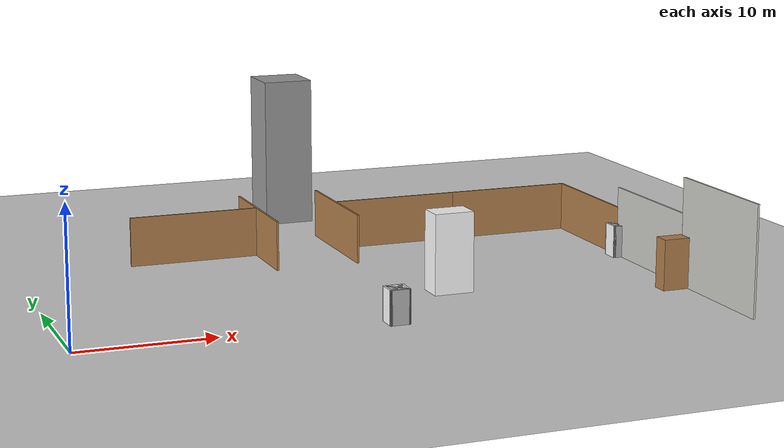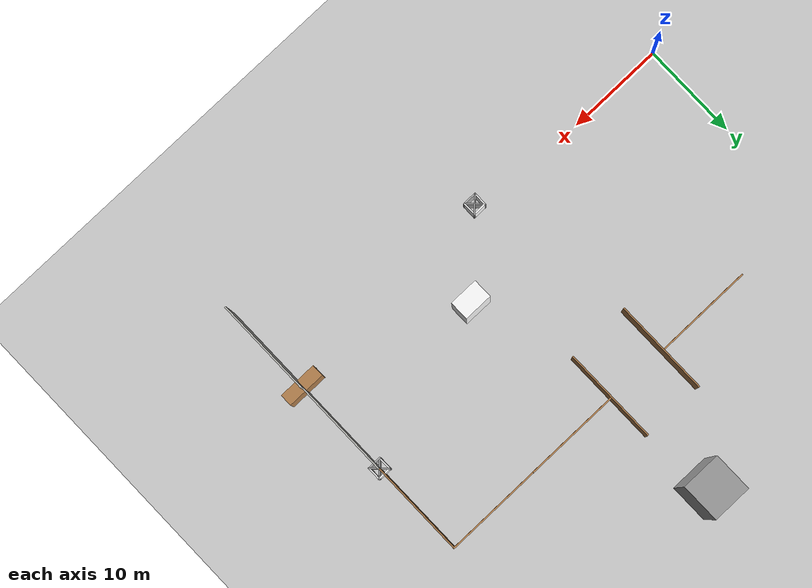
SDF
<sdf version="1.7">
 <world name="default">
  <model name="ground_plane">
   <static>1</static>
   <link name="link">
    <collision name="collision">
     <geometry><plane><normal>0 0 1</normal><size>100 100</size></plane></geometry>
     <surface>
      <contact><collide_bitmask>65535</collide_bitmask></contact>
      <friction><ode><mu>100</mu><mu2>50</mu2></ode></friction>
     </surface>
    </collision>
    <visual name="visual">
     <cast_shadows>0</cast_shadows>
     <geometry><plane><normal>0 0 1</normal><size>100 100</size></plane></geometry>
     <material>
      <script><uri>file://media/materials/scripts/gazebo.material</uri><name>Gazebo/Grey</name></script>
     </material>
    </visual>
   </link>
  </model>
  <model name="Untitled_clone_clone_3">
   <link name="Wall_0">
    <pose>-0.8775 -4.2975 0 0 -0 0</pose>
    <inertial>
     <mass>1</mass>
     <inertia><ixx>1</ixx><ixy>0</ixy><ixz>0</ixz><iyy>1</iyy><iyz>0</iyz><izz>1</izz></inertia>
    </inertial>
    <visual name="Wall_0_Visual">
     <pose>0 0 1.9 0 -0 0</pose>
     <geometry><box><size>10 0.15 3.8</size></box></geometry>
     <material>
      <script><uri>file://media/materials/scripts/gazebo.material</uri><name>Gazebo/Wood</name></script>
      <ambient>1 1 1 1</ambient>
      <shader type="pixel"><normal_map>__default__</normal_map></shader>
      <diffuse>1 1 1 1</diffuse>
      <specular>0.2 0.2 0.2 1</specular>
      <emissive>0 0 0 1</emissive>
     </material>
     <meta><layer>0</layer></meta>
    </visual>
    <collision name="Wall_0_Collision">
     <pose>0 0 1.9 0 -0 0</pose>
     <geometry><box><size>10 0.15 3.8</size></box></geometry>
     <surface>
      <friction>
       <ode><mu>1</mu><mu2>1</mu2><fdir1>0 0 0</fdir1><slip1>0</slip1><slip2>0</slip2></ode>
       <torsional>
        <coefficient>1</coefficient>
        <patch_radius>0</patch_radius>
        <surface_radius>0</surface_radius>
        <use_patch_radius>1</use_patch_radius>
        <ode><slip>0</slip></ode>
       </torsional>
      </friction>
      <bounce><restitution_coefficient>0</restitution_coefficient><threshold>1e+06</threshold></bounce>
      <contact>
       <collide_without_contact>0</collide_without_contact>
       <collide_without_contact_bitmask>1</collide_without_contact_bitmask>
       <collide_bitmask>1</collide_bitmask>
       <ode>
        <soft_cfm>0</soft_cfm>
        <soft_erp>0.2</soft_erp>
        <kp>1e+13</kp>
        <kd>1</kd>
        <max_vel>0.01</max_vel>
        <min_depth>0</min_depth>
       </ode>
       <bullet>
        <split_impulse>1</split_impulse>
        <split_impulse_penetration_threshold>-0.01</split_impulse_penetration_threshold>
        <soft_cfm>0</soft_cfm>
        <soft_erp>0.2</soft_erp>
        <kp>1e+13</kp>
        <kd>1</kd>
       </bullet>
      </contact>
     </surface>
    </collision>
   </link>
   <static>1</static>
   <pose>14.8908 25.1794 0 0 -0 0</pose>
  </model>
  <model name="Untitled_clone_clone_0_clone_2_clone_clone">
   <link name="Wall_0">
    <pose>-0.8775 -4.2975 0 0 -0 0</pose>
    <inertial>
     <mass>1</mass>
     <inertia><ixx>1</ixx><ixy>0</ixy><ixz>0</ixz><iyy>1</iyy><iyz>0</iyz><izz>1</izz></inertia>
    </inertial>
    <visual name="Wall_0_Visual">
     <pose>0 0 1.9 0 -0 0</pose>
     <geometry><box><size>10 0.15 3.8</size></box></geometry>
     <material>
      <script><uri>file://media/materials/scripts/gazebo.material</uri><name>Gazebo/Wood</name></script>
      <ambient>1 1 1 1</ambient>
      <shader type="pixel"><normal_map>__default__</normal_map></shader>
      <diffuse>1 1 1 1</diffuse>
      <specular>0.2 0.2 0.2 1</specular>
      <emissive>0 0 0 1</emissive>
     </material>
     <meta><layer>0</layer></meta>
    </visual>
    <collision name="Wall_0_Collision">
     <pose>0 0 1.9 0 -0 0</pose>
     <geometry><box><size>10 0.15 3.8</size></box></geometry>
     <surface>
      <friction>
       <ode><mu>1</mu><mu2>1</mu2><fdir1>0 0 0</fdir1><slip1>0</slip1><slip2>0</slip2></ode>
       <torsional>
        <coefficient>1</coefficient>
        <patch_radius>0</patch_radius>
        <surface_radius>0</surface_radius>
        <use_patch_radius>1</use_patch_radius>
        <ode><slip>0</slip></ode>
       </torsional>
      </friction>
      <bounce><restitution_coefficient>0</restitution_coefficient><threshold>1e+06</threshold></bounce>
      <contact>
       <collide_without_contact>0</collide_without_contact>
       <collide_without_contact_bitmask>1</collide_without_contact_bitmask>
       <collide_bitmask>1</collide_bitmask>
       <ode>
        <soft_cfm>0</soft_cfm>
        <soft_erp>0.2</soft_erp>
        <kp>1e+13</kp>
        <kd>1</kd>
        <max_vel>0.01</max_vel>
        <min_depth>0</min_depth>
       </ode>
       <bullet>
        <split_impulse>1</split_impulse>
        <split_impulse_penetration_threshold>-0.01</split_impulse_penetration_threshold>
        <soft_cfm>0</soft_cfm>
        <soft_erp>0.2</soft_erp>
        <kp>1e+13</kp>
        <kd>1</kd>
       </bullet>
      </contact>
     </surface>
    </collision>
   </link>
   <static>1</static>
   <pose>14.7928 21.4717 0 0 -0 1.5708</pose>
  </model>
  <model name="Untitled_clone_clone_0_clone_2_clone_clone_clone">
   <link name="Wall_0">
    <pose>-0.8775 -4.2975 0 0 -0 0</pose>
    <inertial>
     <mass>1</mass>
     <inertia><ixx>1</ixx><ixy>0</ixy><ixz>0</ixz><iyy>1</iyy><iyz>0</iyz><izz>1</izz></inertia>
    </inertial>
    <visual name="Wall_0_Visual">
     <pose>0 0 1.9 0 -0 0</pose>
     <geometry><box><size>10 0.15 3.8</size></box></geometry>
     <material>
      <script><uri>file://media/materials/scripts/gazebo.material</uri><name>Gazebo/Wood</name></script>
      <ambient>1 1 1 1</ambient>
      <shader type="pixel"><normal_map>__default__</normal_map></shader>
      <diffuse>1 1 1 1</diffuse>
      <specular>0.2 0.2 0.2 1</specular>
      <emissive>0 0 0 1</emissive>
     </material>
     <meta><layer>0</layer></meta>
    </visual>
    <collision name="Wall_0_Collision">
     <pose>0 0 1.9 0 -0 0</pose>
     <geometry><box><size>10 0.15 3.8</size></box></geometry>
     <surface>
      <friction>
       <ode><mu>1</mu><mu2>1</mu2><fdir1>0 0 0</fdir1><slip1>0</slip1><slip2>0</slip2></ode>
       <torsional>
        <coefficient>1</coefficient>
        <patch_radius>0</patch_radius>
        <surface_radius>0</surface_radius>
        <use_patch_radius>1</use_patch_radius>
        <ode><slip>0</slip></ode>
       </torsional>
      </friction>
      <bounce><restitution_coefficient>0</restitution_coefficient><threshold>1e+06</threshold></bounce>
      <contact>
       <collide_without_contact>0</collide_without_contact>
       <collide_without_contact_bitmask>1</collide_without_contact_bitmask>
       <collide_bitmask>1</collide_bitmask>
       <ode>
        <soft_cfm>0</soft_cfm>
        <soft_erp>0.2</soft_erp>
        <kp>1e+13</kp>
        <kd>1</kd>
        <max_vel>0.01</max_vel>
        <min_depth>0</min_depth>
       </ode>
       <bullet>
        <split_impulse>1</split_impulse>
        <split_impulse_penetration_threshold>-0.01</split_impulse_penetration_threshold>
        <soft_cfm>0</soft_cfm>
        <soft_erp>0.2</soft_erp>
        <kp>1e+13</kp>
        <kd>1</kd>
       </bullet>
      </contact>
     </surface>
    </collision>
   </link>
   <static>1</static>
   <pose>21.2549 21.4517 0 0 -0 1.5708</pose>
  </model>
  <model name="unit_box_clone">
   <link name="link">
    <inertial>
     <mass>1</mass>
     <inertia>
      <ixx>0.166667</ixx>
      <ixy>0</ixy>
      <ixz>0</ixz>
      <iyy>0.166667</iyy>
      <iyz>0</iyz>
      <izz>0.166667</izz>
     </inertia>
    </inertial>
    <visual name="visual">
     <geometry><box><size>4 4 12</size></box></geometry>
     <material>
      <script><name>Gazebo/Grey</name><uri>file://media/materials/scripts/gazebo.material</uri></script>
      <shader type="pixel"><normal_map>__default__</normal_map></shader>
      <ambient>0.3 0.3 0.3 1</ambient>
      <diffuse>0.7 0.7 0.7 1</diffuse>
      <specular>0.01 0.01 0.01 1</specular>
      <emissive>0 0 0 1</emissive>
     </material>
     <pose>0 0 6 0 -0 0</pose>
    </visual>
    <collision name="collision">
     <pose>0 0 6 0 -0 0</pose>
     <geometry><box><size>4 4 12</size></box></geometry>
     <surface>
      <friction>
       <ode><mu>1</mu><mu2>1</mu2><fdir1>0 0 0</fdir1><slip1>0</slip1><slip2>0</slip2></ode>
       <torsional>
        <coefficient>1</coefficient>
        <patch_radius>0</patch_radius>
        <surface_radius>0</surface_radius>
        <use_patch_radius>1</use_patch_radius>
        <ode><slip>0</slip></ode>
       </torsional>
      </friction>
      <bounce><restitution_coefficient>0</restitution_coefficient><threshold>1e+06</threshold></bounce>
      <contact>
       <collide_without_contact>0</collide_without_contact>
       <collide_without_contact_bitmask>1</collide_without_contact_bitmask>
       <collide_bitmask>1</collide_bitmask>
       <ode>
        <soft_cfm>0</soft_cfm>
        <soft_erp>0.2</soft_erp>
        <kp>1e+13</kp>
        <kd>1</kd>
        <max_vel>0.01</max_vel>
        <min_depth>0</min_depth>
       </ode>
       <bullet>
        <split_impulse>1</split_impulse>
        <split_impulse_penetration_threshold>-0.01</split_impulse_penetration_threshold>
        <soft_cfm>0</soft_cfm>
        <soft_erp>0.2</soft_erp>
        <kp>1e+13</kp>
        <kd>1</kd>
       </bullet>
      </contact>
     </surface>
    </collision>
   </link>
   <static>0</static>
   <pose>24.9828 32.7649 -0 0 -0 0</pose>
  </model>
  <model name="Untitled_clone_clone_3_clone">
   <link name="Wall_0">
    <pose>-0.8775 -4.2975 0 0 -0 0</pose>
    <inertial>
     <mass>1</mass>
     <inertia><ixx>1</ixx><ixy>0</ixy><ixz>0</ixz><iyy>1</iyy><iyz>0</iyz><izz>1</izz></inertia>
    </inertial>
    <visual name="Wall_0_Visual">
     <pose>0 0 1.9 0 -0 0</pose>
     <geometry><box><size>10 0.15 3.8</size></box></geometry>
     <material>
      <script><uri>file://media/materials/scripts/gazebo.material</uri><name>Gazebo/Wood</name></script>
      <ambient>1 1 1 1</ambient>
      <shader type="pixel"><normal_map>__default__</normal_map></shader>
      <diffuse>1 1 1 1</diffuse>
      <specular>0.2 0.2 0.2 1</specular>
      <emissive>0 0 0 1</emissive>
     </material>
     <meta><layer>0</layer></meta>
    </visual>
    <collision name="Wall_0_Collision">
     <pose>0 0 1.9 0 -0 0</pose>
     <geometry><box><size>10 0.15 3.8</size></box></geometry>
     <surface>
      <friction>
       <ode><mu>1</mu><mu2>1</mu2><fdir1>0 0 0</fdir1><slip1>0</slip1><slip2>0</slip2></ode>
       <torsional>
        <coefficient>1</coefficient>
        <patch_radius>0</patch_radius>
        <surface_radius>0</surface_radius>
        <use_patch_radius>1</use_patch_radius>
        <ode><slip>0</slip></ode>
       </torsional>
      </friction>
      <bounce><restitution_coefficient>0</restitution_coefficient><threshold>1e+06</threshold></bounce>
      <contact>
       <collide_without_contact>0</collide_without_contact>
       <collide_without_contact_bitmask>1</collide_without_contact_bitmask>
       <collide_bitmask>1</collide_bitmask>
       <ode>
        <soft_cfm>0</soft_cfm>
        <soft_erp>0.2</soft_erp>
        <kp>1e+13</kp>
        <kd>1</kd>
        <max_vel>0.01</max_vel>
        <min_depth>0</min_depth>
       </ode>
       <bullet>
        <split_impulse>1</split_impulse>
        <split_impulse_penetration_threshold>-0.01</split_impulse_penetration_threshold>
        <soft_cfm>0</soft_cfm>
        <soft_erp>0.2</soft_erp>
        <kp>1e+13</kp>
        <kd>1</kd>
       </bullet>
      </contact>
     </surface>
    </collision>
   </link>
   <static>1</static>
   <pose>31.472 25.0526 0 0 -0 0</pose>
  </model>
  <model name="Untitled_clone_clone_3_clone_0">
   <link name="Wall_0">
    <pose>-0.8775 -4.2975 0 0 -0 0</pose>
    <inertial>
     <mass>1</mass>
     <inertia><ixx>1</ixx><ixy>0</ixy><ixz>0</ixz><iyy>1</iyy><iyz>0</iyz><izz>1</izz></inertia>
    </inertial>
    <visual name="Wall_0_Visual">
     <pose>0 0 1.9 0 -0 0</pose>
     <geometry><box><size>10 0.15 3.8</size></box></geometry>
     <material>
      <script><uri>file://media/materials/scripts/gazebo.material</uri><name>Gazebo/Wood</name></script>
      <ambient>1 1 1 1</ambient>
      <shader type="pixel"><normal_map>__default__</normal_map></shader>
      <diffuse>1 1 1 1</diffuse>
      <specular>0.2 0.2 0.2 1</specular>
      <emissive>0 0 0 1</emissive>
     </material>
     <meta><layer>0</layer></meta>
    </visual>
    <collision name="Wall_0_Collision">
     <pose>0 0 1.9 0 -0 0</pose>
     <geometry><box><size>10 0.15 3.8</size></box></geometry>
     <surface>
      <friction>
       <ode><mu>1</mu><mu2>1</mu2><fdir1>0 0 0</fdir1><slip1>0</slip1><slip2>0</slip2></ode>
       <torsional>
        <coefficient>1</coefficient>
        <patch_radius>0</patch_radius>
        <surface_radius>0</surface_radius>
        <use_patch_radius>1</use_patch_radius>
        <ode><slip>0</slip></ode>
       </torsional>
      </friction>
      <bounce><restitution_coefficient>0</restitution_coefficient><threshold>1e+06</threshold></bounce>
      <contact>
       <collide_without_contact>0</collide_without_contact>
       <collide_without_contact_bitmask>1</collide_without_contact_bitmask>
       <collide_bitmask>1</collide_bitmask>
       <ode>
        <soft_cfm>0</soft_cfm>
        <soft_erp>0.2</soft_erp>
        <kp>1e+13</kp>
        <kd>1</kd>
        <max_vel>0.01</max_vel>
        <min_depth>0</min_depth>
       </ode>
       <bullet>
        <split_impulse>1</split_impulse>
        <split_impulse_penetration_threshold>-0.01</split_impulse_penetration_threshold>
        <soft_cfm>0</soft_cfm>
        <soft_erp>0.2</soft_erp>
        <kp>1e+13</kp>
        <kd>1</kd>
       </bullet>
      </contact>
     </surface>
    </collision>
   </link>
   <static>1</static>
   <pose>41.3724 25.0578 0 0 -0 0</pose>
  </model>
  <model name="Untitled_clone_clone_0_clone_2_clone_clone_clone_clone">
   <link name="Wall_0">
    <pose>-0.8775 -4.2975 0 0 -0 0</pose>
    <inertial>
     <mass>1</mass>
     <inertia><ixx>1</ixx><ixy>0</ixy><ixz>0</ixz><iyy>1</iyy><iyz>0</iyz><izz>1</izz></inertia>
    </inertial>
    <visual name="Wall_0_Visual">
     <pose>0 0 1.9 0 -0 0</pose>
     <geometry><box><size>10 0.15 3.8</size></box></geometry>
     <material>
      <script><uri>file://media/materials/scripts/gazebo.material</uri><name>Gazebo/Wood</name></script>
      <ambient>1 1 1 1</ambient>
      <shader type="pixel"><normal_map>__default__</normal_map></shader>
      <diffuse>1 1 1 1</diffuse>
      <specular>0.2 0.2 0.2 1</specular>
      <emissive>0 0 0 1</emissive>
     </material>
     <meta><layer>0</layer></meta>
    </visual>
    <collision name="Wall_0_Collision">
     <pose>0 0 1.9 0 -0 0</pose>
     <geometry><box><size>10 0.15 3.8</size></box></geometry>
     <surface>
      <friction>
       <ode><mu>1</mu><mu2>1</mu2><fdir1>0 0 0</fdir1><slip1>0</slip1><slip2>0</slip2></ode>
       <torsional>
        <coefficient>1</coefficient>
        <patch_radius>0</patch_radius>
        <surface_radius>0</surface_radius>
        <use_patch_radius>1</use_patch_radius>
        <ode><slip>0</slip></ode>
       </torsional>
      </friction>
      <bounce><restitution_coefficient>0</restitution_coefficient><threshold>1e+06</threshold></bounce>
      <contact>
       <collide_without_contact>0</collide_without_contact>
       <collide_without_contact_bitmask>1</collide_without_contact_bitmask>
       <collide_bitmask>1</collide_bitmask>
       <ode>
        <soft_cfm>0</soft_cfm>
        <soft_erp>0.2</soft_erp>
        <kp>1e+13</kp>
        <kd>1</kd>
        <max_vel>0.01</max_vel>
        <min_depth>0</min_depth>
       </ode>
       <bullet>
        <split_impulse>1</split_impulse>
        <split_impulse_penetration_threshold>-0.01</split_impulse_penetration_threshold>
        <soft_cfm>0</soft_cfm>
        <soft_erp>0.2</soft_erp>
        <kp>1e+13</kp>
        <kd>1</kd>
       </bullet>
      </contact>
     </surface>
    </collision>
   </link>
   <static>1</static>
   <pose>41.1492 16.6848 0 0 -0 1.5708</pose>
  </model>
  <model name="Untitled_1_clone_0">
   <link name="Wall_10">
    <pose>4.92197 -3.43197 0 0 -0 1.5708</pose>
    <inertial>
     <mass>1</mass>
     <inertia><ixx>1</ixx><ixy>0</ixy><ixz>0</ixz><iyy>1</iyy><iyz>0</iyz><izz>1</izz></inertia>
    </inertial>
    <visual name="Wall_10_Visual">
     <pose>0 0 1.25 0 -0 0</pose>
     <geometry><box><size>1.5 0.15 2.5</size></box></geometry>
     <material>
      <script><uri>file://media/materials/scripts/gazebo.material</uri><name>Gazebo/CoM</name></script>
      <ambient>1 1 1 1</ambient>
      <shader type="pixel"><normal_map>__default__</normal_map></shader>
      <diffuse>1 1 1 1</diffuse>
      <specular>0 0 0 1</specular>
      <emissive>0 0 0 1</emissive>
     </material>
     <meta><layer>0</layer></meta>
    </visual>
    <collision name="Wall_10_Collision">
     <pose>0 0 1.25 0 -0 0</pose>
     <geometry><box><size>1.5 0.15 2.5</size></box></geometry>
     <surface>
      <friction>
       <ode><mu>1</mu><mu2>1</mu2><fdir1>0 0 0</fdir1><slip1>0</slip1><slip2>0</slip2></ode>
       <torsional>
        <coefficient>1</coefficient>
        <patch_radius>0</patch_radius>
        <surface_radius>0</surface_radius>
        <use_patch_radius>1</use_patch_radius>
        <ode><slip>0</slip></ode>
       </torsional>
      </friction>
      <bounce><restitution_coefficient>0</restitution_coefficient><threshold>1e+06</threshold></bounce>
      <contact>
       <collide_without_contact>0</collide_without_contact>
       <collide_without_contact_bitmask>1</collide_without_contact_bitmask>
       <collide_bitmask>1</collide_bitmask>
       <ode>
        <soft_cfm>0</soft_cfm>
        <soft_erp>0.2</soft_erp>
        <kp>1e+13</kp>
        <kd>1</kd>
        <max_vel>0.01</max_vel>
        <min_depth>0</min_depth>
       </ode>
       <bullet>
        <split_impulse>1</split_impulse>
        <split_impulse_penetration_threshold>-0.01</split_impulse_penetration_threshold>
        <soft_cfm>0</soft_cfm>
        <soft_erp>0.2</soft_erp>
        <kp>1e+13</kp>
        <kd>1</kd>
       </bullet>
      </contact>
     </surface>
    </collision>
   </link>
   <link name="Wall_11">
    <pose>5.59697 -3.43197 0 0 0 -0.785398</pose>
    <visual name="Wall_11_Visual">
     <pose>0 0 1.25 0 -0 0</pose>
     <geometry><box><size>2.05919 0.15 2.5</size></box></geometry>
     <material>
      <script><uri>file://media/materials/scripts/gazebo.material</uri><name>Gazebo/Grey</name></script>
      <ambient>1 1 1 1</ambient>
      <shader type="pixel"/>
     </material>
     <meta><layer>0</layer></meta>
    </visual>
    <collision name="Wall_11_Collision">
     <pose>0 0 1.25 0 -0 0</pose>
     <geometry><box><size>2.05919 0.15 2.5</size></box></geometry>
     <surface>
      <friction>
       <ode><mu>1</mu><mu2>1</mu2><fdir1>0 0 0</fdir1><slip1>0</slip1><slip2>0</slip2></ode>
       <torsional>
        <coefficient>1</coefficient>
        <patch_radius>0</patch_radius>
        <surface_radius>0</surface_radius>
        <use_patch_radius>1</use_patch_radius>
        <ode><slip>0</slip></ode>
       </torsional>
      </friction>
      <bounce><restitution_coefficient>0</restitution_coefficient><threshold>1e+06</threshold></bounce>
      <contact>
       <collide_without_contact>0</collide_without_contact>
       <collide_without_contact_bitmask>1</collide_without_contact_bitmask>
       <collide_bitmask>1</collide_bitmask>
       <ode>
        <soft_cfm>0</soft_cfm>
        <soft_erp>0.2</soft_erp>
        <kp>1e+13</kp>
        <kd>1</kd>
        <max_vel>0.01</max_vel>
        <min_depth>0</min_depth>
       </ode>
       <bullet>
        <split_impulse>1</split_impulse>
        <split_impulse_penetration_threshold>-0.01</split_impulse_penetration_threshold>
        <soft_cfm>0</soft_cfm>
        <soft_erp>0.2</soft_erp>
        <kp>1e+13</kp>
        <kd>1</kd>
       </bullet>
      </contact>
     </surface>
    </collision>
   </link>
   <link name="Wall_13">
    <pose>5.59697 -3.43197 0 0 -0 0.785398</pose>
    <visual name="Wall_13_Visual">
     <pose>0 0 1.25 0 -0 0</pose>
     <geometry><box><size>2.05919 0.15 2.5</size></box></geometry>
     <material>
      <script><uri>file://media/materials/scripts/gazebo.material</uri><name>Gazebo/Grey</name></script>
      <ambient>1 1 1 1</ambient>
      <shader type="pixel"/>
     </material>
     <meta><layer>0</layer></meta>
    </visual>
    <collision name="Wall_13_Collision">
     <pose>0 0 1.25 0 -0 0</pose>
     <geometry><box><size>2.05919 0.15 2.5</size></box></geometry>
     <surface>
      <friction>
       <ode><mu>1</mu><mu2>1</mu2><fdir1>0 0 0</fdir1><slip1>0</slip1><slip2>0</slip2></ode>
       <torsional>
        <coefficient>1</coefficient>
        <patch_radius>0</patch_radius>
        <surface_radius>0</surface_radius>
        <use_patch_radius>1</use_patch_radius>
        <ode><slip>0</slip></ode>
       </torsional>
      </friction>
      <bounce><restitution_coefficient>0</restitution_coefficient><threshold>1e+06</threshold></bounce>
      <contact>
       <collide_without_contact>0</collide_without_contact>
       <collide_without_contact_bitmask>1</collide_without_contact_bitmask>
       <collide_bitmask>1</collide_bitmask>
       <ode>
        <soft_cfm>0</soft_cfm>
        <soft_erp>0.2</soft_erp>
        <kp>1e+13</kp>
        <kd>1</kd>
        <max_vel>0.01</max_vel>
        <min_depth>0</min_depth>
       </ode>
       <bullet>
        <split_impulse>1</split_impulse>
        <split_impulse_penetration_threshold>-0.01</split_impulse_penetration_threshold>
        <soft_cfm>0</soft_cfm>
        <soft_erp>0.2</soft_erp>
        <kp>1e+13</kp>
        <kd>1</kd>
       </bullet>
      </contact>
     </surface>
    </collision>
   </link>
   <link name="Wall_7">
    <pose>5.59697 -2.75697 0 0 -0 0</pose>
    <inertial>
     <mass>1</mass>
     <inertia><ixx>1</ixx><ixy>0</ixy><ixz>0</ixz><iyy>1</iyy><iyz>0</iyz><izz>1</izz></inertia>
    </inertial>
    <visual name="Wall_7_Visual">
     <pose>0 0 1.25 0 -0 0</pose>
     <geometry><box><size>1.5 0.15 2.5</size></box></geometry>
     <material>
      <script><uri>file://media/materials/scripts/gazebo.material</uri><name>Gazebo/CoM</name></script>
      <ambient>1 1 1 1</ambient>
      <shader type="pixel"><normal_map>__default__</normal_map></shader>
      <diffuse>1 1 1 1</diffuse>
      <specular>0 0 0 1</specular>
      <emissive>0 0 0 1</emissive>
     </material>
     <meta><layer>0</layer></meta>
    </visual>
    <collision name="Wall_7_Collision">
     <pose>0 0 1.25 0 -0 0</pose>
     <geometry><box><size>1.5 0.15 2.5</size></box></geometry>
     <surface>
      <friction>
       <ode><mu>1</mu><mu2>1</mu2><fdir1>0 0 0</fdir1><slip1>0</slip1><slip2>0</slip2></ode>
       <torsional>
        <coefficient>1</coefficient>
        <patch_radius>0</patch_radius>
        <surface_radius>0</surface_radius>
        <use_patch_radius>1</use_patch_radius>
        <ode><slip>0</slip></ode>
       </torsional>
      </friction>
      <bounce><restitution_coefficient>0</restitution_coefficient><threshold>1e+06</threshold></bounce>
      <contact>
       <collide_without_contact>0</collide_without_contact>
       <collide_without_contact_bitmask>1</collide_without_contact_bitmask>
       <collide_bitmask>1</collide_bitmask>
       <ode>
        <soft_cfm>0</soft_cfm>
        <soft_erp>0.2</soft_erp>
        <kp>1e+13</kp>
        <kd>1</kd>
        <max_vel>0.01</max_vel>
        <min_depth>0</min_depth>
       </ode>
       <bullet>
        <split_impulse>1</split_impulse>
        <split_impulse_penetration_threshold>-0.01</split_impulse_penetration_threshold>
        <soft_cfm>0</soft_cfm>
        <soft_erp>0.2</soft_erp>
        <kp>1e+13</kp>
        <kd>1</kd>
       </bullet>
      </contact>
     </surface>
    </collision>
   </link>
   <link name="Wall_8">
    <pose>6.27197 -3.43197 0 0 0 -1.5708</pose>
    <inertial>
     <mass>1</mass>
     <inertia><ixx>1</ixx><ixy>0</ixy><ixz>0</ixz><iyy>1</iyy><iyz>0</iyz><izz>1</izz></inertia>
    </inertial>
    <visual name="Wall_8_Visual">
     <pose>0 0 1.25 0 -0 0</pose>
     <geometry><box><size>1.5 0.15 2.5</size></box></geometry>
     <material>
      <script><uri>file://media/materials/scripts/gazebo.material</uri><name>Gazebo/CoM</name></script>
      <ambient>1 1 1 1</ambient>
      <shader type="pixel"><normal_map>__default__</normal_map></shader>
      <diffuse>1 1 1 1</diffuse>
      <specular>0 0 0 1</specular>
      <emissive>0 0 0 1</emissive>
     </material>
     <meta><layer>0</layer></meta>
    </visual>
    <collision name="Wall_8_Collision">
     <pose>0 0 1.25 0 -0 0</pose>
     <geometry><box><size>1.5 0.15 2.5</size></box></geometry>
     <surface>
      <friction>
       <ode><mu>1</mu><mu2>1</mu2><fdir1>0 0 0</fdir1><slip1>0</slip1><slip2>0</slip2></ode>
       <torsional>
        <coefficient>1</coefficient>
        <patch_radius>0</patch_radius>
        <surface_radius>0</surface_radius>
        <use_patch_radius>1</use_patch_radius>
        <ode><slip>0</slip></ode>
       </torsional>
      </friction>
      <bounce><restitution_coefficient>0</restitution_coefficient><threshold>1e+06</threshold></bounce>
      <contact>
       <collide_without_contact>0</collide_without_contact>
       <collide_without_contact_bitmask>1</collide_without_contact_bitmask>
       <collide_bitmask>1</collide_bitmask>
       <ode>
        <soft_cfm>0</soft_cfm>
        <soft_erp>0.2</soft_erp>
        <kp>1e+13</kp>
        <kd>1</kd>
        <max_vel>0.01</max_vel>
        <min_depth>0</min_depth>
       </ode>
       <bullet>
        <split_impulse>1</split_impulse>
        <split_impulse_penetration_threshold>-0.01</split_impulse_penetration_threshold>
        <soft_cfm>0</soft_cfm>
        <soft_erp>0.2</soft_erp>
        <kp>1e+13</kp>
        <kd>1</kd>
       </bullet>
      </contact>
     </surface>
    </collision>
   </link>
   <link name="Wall_9">
    <pose>5.59697 -4.10697 0 0 -0 3.14159</pose>
    <inertial>
     <mass>1</mass>
     <inertia><ixx>1</ixx><ixy>0</ixy><ixz>0</ixz><iyy>1</iyy><iyz>0</iyz><izz>1</izz></inertia>
    </inertial>
    <visual name="Wall_9_Visual">
     <pose>0 0 1.25 0 -0 0</pose>
     <geometry><box><size>1.5 0.15 2.5</size></box></geometry>
     <material>
      <script><uri>file://media/materials/scripts/gazebo.material</uri><name>Gazebo/CoM</name></script>
      <ambient>1 1 1 1</ambient>
      <shader type="pixel"><normal_map>__default__</normal_map></shader>
      <diffuse>0.7 0.7 0.7 1</diffuse>
      <specular>0.01 0.01 0.01 1</specular>
      <emissive>0 0 0 1</emissive>
     </material>
     <meta><layer>0</layer></meta>
    </visual>
    <collision name="Wall_9_Collision">
     <pose>0 0 1.25 0 -0 0</pose>
     <geometry><box><size>1.5 0.15 2.5</size></box></geometry>
     <surface>
      <friction>
       <ode><mu>1</mu><mu2>1</mu2><fdir1>0 0 0</fdir1><slip1>0</slip1><slip2>0</slip2></ode>
       <torsional>
        <coefficient>1</coefficient>
        <patch_radius>0</patch_radius>
        <surface_radius>0</surface_radius>
        <use_patch_radius>1</use_patch_radius>
        <ode><slip>0</slip></ode>
       </torsional>
      </friction>
      <bounce><restitution_coefficient>0</restitution_coefficient><threshold>1e+06</threshold></bounce>
      <contact>
       <collide_without_contact>0</collide_without_contact>
       <collide_without_contact_bitmask>1</collide_without_contact_bitmask>
       <collide_bitmask>1</collide_bitmask>
       <ode>
        <soft_cfm>0</soft_cfm>
        <soft_erp>0.2</soft_erp>
        <kp>1e+13</kp>
        <kd>1</kd>
        <max_vel>0.01</max_vel>
        <min_depth>0</min_depth>
       </ode>
       <bullet>
        <split_impulse>1</split_impulse>
        <split_impulse_penetration_threshold>-0.01</split_impulse_penetration_threshold>
        <soft_cfm>0</soft_cfm>
        <soft_erp>0.2</soft_erp>
        <kp>1e+13</kp>
        <kd>1</kd>
       </bullet>
      </contact>
     </surface>
    </collision>
   </link>
   <static>1</static>
   <pose>39.8518 14.1865 0 0 -0 0</pose>
  </model>
  <model name="Untitled_0_clone_6_clone">
   <link name="Wall_2">
    <pose>-0.3075 -1.8625 0 0 0 -1.5708</pose>
    <inertial>
     <mass>1</mass>
     <inertia><ixx>1</ixx><ixy>0</ixy><ixz>0</ixz><iyy>1</iyy><iyz>0</iyz><izz>1</izz></inertia>
    </inertial>
    <visual name="Wall_2_Visual">
     <pose>0 0 2.7 0 -0 0</pose>
     <geometry><box><size>10 0.15 5.4</size></box></geometry>
     <material>
      <script><uri>file://media/materials/scripts/gazebo.material</uri><name>Gazebo/CeilingTiled</name></script>
      <ambient>1 1 1 1</ambient>
      <shader type="pixel"><normal_map>__default__</normal_map></shader>
      <diffuse>1 1 1 1</diffuse>
      <specular>0 0 0 1</specular>
      <emissive>0 0 0 1</emissive>
     </material>
     <meta><layer>0</layer></meta>
    </visual>
    <collision name="Wall_2_Collision">
     <pose>0 0 2.7 0 -0 0</pose>
     <geometry><box><size>10 0.15 5.4</size></box></geometry>
     <surface>
      <friction>
       <ode><mu>1</mu><mu2>1</mu2><fdir1>0 0 0</fdir1><slip1>0</slip1><slip2>0</slip2></ode>
       <torsional>
        <coefficient>1</coefficient>
        <patch_radius>0</patch_radius>
        <surface_radius>0</surface_radius>
        <use_patch_radius>1</use_patch_radius>
        <ode><slip>0</slip></ode>
       </torsional>
      </friction>
      <bounce><restitution_coefficient>0</restitution_coefficient><threshold>1e+06</threshold></bounce>
      <contact>
       <collide_without_contact>0</collide_without_contact>
       <collide_without_contact_bitmask>1</collide_without_contact_bitmask>
       <collide_bitmask>1</collide_bitmask>
       <ode>
        <soft_cfm>0</soft_cfm>
        <soft_erp>0.2</soft_erp>
        <kp>1e+13</kp>
        <kd>1</kd>
        <max_vel>0.01</max_vel>
        <min_depth>0</min_depth>
       </ode>
       <bullet>
        <split_impulse>1</split_impulse>
        <split_impulse_penetration_threshold>-0.01</split_impulse_penetration_threshold>
        <soft_cfm>0</soft_cfm>
        <soft_erp>0.2</soft_erp>
        <kp>1e+13</kp>
        <kd>1</kd>
       </bullet>
      </contact>
     </surface>
    </collision>
   </link>
   <static>1</static>
   <pose>45.7547 7.72579 0 0 -0 0</pose>
  </model>
  <model name="Untitled_clone_clone_0_clone_clone_0_clone_clone">
   <link name="Wall_0">
    <pose>-0.877501 -4.2975 0 0 -0 0</pose>
    <inertial>
     <mass>1</mass>
     <inertia><ixx>1</ixx><ixy>0</ixy><ixz>0</ixz><iyy>1</iyy><iyz>0</iyz><izz>1</izz></inertia>
    </inertial>
    <visual name="Wall_0_Visual">
     <pose>0 0 1.9 0 -0 0</pose>
     <geometry><box><size>4 1.25 3.8</size></box></geometry>
     <material>
      <script><uri>file://media/materials/scripts/gazebo.material</uri><name>Gazebo/Wood</name></script>
      <ambient>1 1 1 1</ambient>
      <shader type="pixel"><normal_map>__default__</normal_map></shader>
      <diffuse>1 1 1 1</diffuse>
      <specular>0.2 0.2 0.2 1</specular>
      <emissive>0 0 0 1</emissive>
     </material>
     <meta><layer>0</layer></meta>
    </visual>
    <collision name="Wall_0_Collision">
     <pose>0 0 1.9 0 -0 0</pose>
     <geometry><box><size>4 1.25 3.8</size></box></geometry>
     <surface>
      <friction>
       <ode><mu>1</mu><mu2>1</mu2><fdir1>0 0 0</fdir1><slip1>0</slip1><slip2>0</slip2></ode>
       <torsional>
        <coefficient>1</coefficient>
        <patch_radius>0</patch_radius>
        <surface_radius>0</surface_radius>
        <use_patch_radius>1</use_patch_radius>
        <ode><slip>0</slip></ode>
       </torsional>
      </friction>
      <bounce><restitution_coefficient>0</restitution_coefficient><threshold>1e+06</threshold></bounce>
      <contact>
       <collide_without_contact>0</collide_without_contact>
       <collide_without_contact_bitmask>1</collide_without_contact_bitmask>
       <collide_bitmask>1</collide_bitmask>
       <ode>
        <soft_cfm>0</soft_cfm>
        <soft_erp>0.2</soft_erp>
        <kp>1e+13</kp>
        <kd>1</kd>
        <max_vel>0.01</max_vel>
        <min_depth>0</min_depth>
       </ode>
       <bullet>
        <split_impulse>1</split_impulse>
        <split_impulse_penetration_threshold>-0.01</split_impulse_penetration_threshold>
        <soft_cfm>0</soft_cfm>
        <soft_erp>0.2</soft_erp>
        <kp>1e+13</kp>
        <kd>1</kd>
       </bullet>
      </contact>
     </surface>
    </collision>
   </link>
   <static>1</static>
   <pose>46.2492 4.70641 0 0 -0 0</pose>
  </model>
  <model name="Untitled_0_clone_6_clone_clone">
   <link name="Wall_2">
    <pose>-0.307499 -1.8625 0 0 0 -1.5708</pose>
    <inertial>
     <mass>1</mass>
     <inertia><ixx>1</ixx><ixy>0</ixy><ixz>0</ixz><iyy>1</iyy><iyz>0</iyz><izz>1</izz></inertia>
    </inertial>
    <visual name="Wall_2_Visual">
     <pose>0 0 4.05 0 -0 0</pose>
     <geometry><box><size>10 0.15 8.1</size></box></geometry>
     <material>
      <script><uri>file://media/materials/scripts/gazebo.material</uri><name>Gazebo/CeilingTiled</name></script>
      <ambient>1 1 1 1</ambient>
      <shader type="pixel"><normal_map>__default__</normal_map></shader>
      <diffuse>1 1 1 1</diffuse>
      <specular>0 0 0 1</specular>
      <emissive>0 0 0 1</emissive>
     </material>
     <meta><layer>0</layer></meta>
    </visual>
    <collision name="Wall_2_Collision">
     <pose>0 0 4.05 0 -0 0</pose>
     <geometry><box><size>10 0.15 8.1</size></box></geometry>
     <surface>
      <friction>
       <ode><mu>1</mu><mu2>1</mu2><fdir1>0 0 0</fdir1><slip1>0</slip1><slip2>0</slip2></ode>
       <torsional>
        <coefficient>1</coefficient>
        <patch_radius>0</patch_radius>
        <surface_radius>0</surface_radius>
        <use_patch_radius>1</use_patch_radius>
        <ode><slip>0</slip></ode>
       </torsional>
      </friction>
      <bounce><restitution_coefficient>0</restitution_coefficient><threshold>1e+06</threshold></bounce>
      <contact>
       <collide_without_contact>0</collide_without_contact>
       <collide_without_contact_bitmask>1</collide_without_contact_bitmask>
       <collide_bitmask>1</collide_bitmask>
       <ode>
        <soft_cfm>0</soft_cfm>
        <soft_erp>0.2</soft_erp>
        <kp>1e+13</kp>
        <kd>1</kd>
        <max_vel>0.01</max_vel>
        <min_depth>0</min_depth>
       </ode>
       <bullet>
        <split_impulse>1</split_impulse>
        <split_impulse_penetration_threshold>-0.01</split_impulse_penetration_threshold>
        <soft_cfm>0</soft_cfm>
        <soft_erp>0.2</soft_erp>
        <kp>1e+13</kp>
        <kd>1</kd>
       </bullet>
      </contact>
     </surface>
    </collision>
   </link>
   <static>1</static>
   <pose>45.7565 -2.2491 0 0 -0 0</pose>
  </model>
  <model name="Untitled_clone_clone_0_clone_clone_0_clone_0_clone_0_clone_0_clone_0_clone">
   <link name="Wall_0">
    <pose>-0.877501 -4.2975 0 0 -0 0</pose>
    <inertial>
     <mass>1</mass>
     <inertia><ixx>1</ixx><ixy>0</ixy><ixz>0</ixz><iyy>1</iyy><iyz>0</iyz><izz>1</izz></inertia>
    </inertial>
    <visual name="Wall_0_Visual">
     <pose>0 0 3 0 -0 0</pose>
     <geometry><box><size>3 2 6</size></box></geometry>
     <material>
      <script><uri>file://media/materials/scripts/gazebo.material</uri><name>Gazebo/CoM</name></script>
      <ambient>1 1 1 1</ambient>
      <shader type="pixel"><normal_map>__default__</normal_map></shader>
      <diffuse>1 1 1 1</diffuse>
      <specular>0.2 0.2 0.2 1</specular>
      <emissive>0 0 0 1</emissive>
     </material>
     <meta><layer>0</layer></meta>
    </visual>
    <collision name="Wall_0_Collision">
     <pose>0 0 3 0 -0 0</pose>
     <geometry><box><size>3 2 6</size></box></geometry>
     <surface>
      <friction>
       <ode><mu>1</mu><mu2>1</mu2><fdir1>0 0 0</fdir1><slip1>0</slip1><slip2>0</slip2></ode>
       <torsional>
        <coefficient>1</coefficient>
        <patch_radius>0</patch_radius>
        <surface_radius>0</surface_radius>
        <use_patch_radius>1</use_patch_radius>
        <ode><slip>0</slip></ode>
       </torsional>
      </friction>
      <bounce><restitution_coefficient>0</restitution_coefficient><threshold>1e+06</threshold></bounce>
      <contact>
       <collide_without_contact>0</collide_without_contact>
       <collide_without_contact_bitmask>1</collide_without_contact_bitmask>
       <collide_bitmask>1</collide_bitmask>
       <ode>
        <soft_cfm>0</soft_cfm>
        <soft_erp>0.2</soft_erp>
        <kp>1e+13</kp>
        <kd>1</kd>
        <max_vel>0.01</max_vel>
        <min_depth>0</min_depth>
       </ode>
       <bullet>
        <split_impulse>1</split_impulse>
        <split_impulse_penetration_threshold>-0.01</split_impulse_penetration_threshold>
        <soft_cfm>0</soft_cfm>
        <soft_erp>0.2</soft_erp>
        <kp>1e+13</kp>
        <kd>1</kd>
       </bullet>
      </contact>
     </surface>
    </collision>
   </link>
   <static>1</static>
   <pose>29.7395 9.80504 0 0 -0 0</pose>
  </model>
  <model name="Untitled_1_clone_3_clone_clone_9">
   <link name="Wall_10">
    <pose>4.92197 -3.43197 0 0 -0 1.5708</pose>
    <inertial>
     <mass>1</mass>
     <inertia><ixx>1</ixx><ixy>0</ixy><ixz>0</ixz><iyy>1</iyy><iyz>0</iyz><izz>1</izz></inertia>
    </inertial>
    <visual name="Wall_10_Visual">
     <pose>0 0 1.25 0 -0 0</pose>
     <geometry><box><size>1.5 0.15 2.5</size></box></geometry>
     <material>
      <script><uri>file://media/materials/scripts/gazebo.material</uri><name>Gazebo/CoM</name></script>
      <ambient>1 1 1 1</ambient>
      <shader type="pixel"><normal_map>__default__</normal_map></shader>
      <diffuse>1 1 1 1</diffuse>
      <specular>0 0 0 1</specular>
      <emissive>0 0 0 1</emissive>
     </material>
     <meta><layer>0</layer></meta>
    </visual>
    <collision name="Wall_10_Collision">
     <pose>0 0 1.25 0 -0 0</pose>
     <geometry><box><size>1.5 0.15 2.5</size></box></geometry>
     <surface>
      <friction>
       <ode><mu>1</mu><mu2>1</mu2><fdir1>0 0 0</fdir1><slip1>0</slip1><slip2>0</slip2></ode>
       <torsional>
        <coefficient>1</coefficient>
        <patch_radius>0</patch_radius>
        <surface_radius>0</surface_radius>
        <use_patch_radius>1</use_patch_radius>
        <ode><slip>0</slip></ode>
       </torsional>
      </friction>
      <bounce><restitution_coefficient>0</restitution_coefficient><threshold>1e+06</threshold></bounce>
      <contact>
       <collide_without_contact>0</collide_without_contact>
       <collide_without_contact_bitmask>1</collide_without_contact_bitmask>
       <collide_bitmask>1</collide_bitmask>
       <ode>
        <soft_cfm>0</soft_cfm>
        <soft_erp>0.2</soft_erp>
        <kp>1e+13</kp>
        <kd>1</kd>
        <max_vel>0.01</max_vel>
        <min_depth>0</min_depth>
       </ode>
       <bullet>
        <split_impulse>1</split_impulse>
        <split_impulse_penetration_threshold>-0.01</split_impulse_penetration_threshold>
        <soft_cfm>0</soft_cfm>
        <soft_erp>0.2</soft_erp>
        <kp>1e+13</kp>
        <kd>1</kd>
       </bullet>
      </contact>
     </surface>
    </collision>
   </link>
   <link name="Wall_11">
    <pose>5.59697 -3.43197 0 0 0 -0.785398</pose>
    <visual name="Wall_11_Visual">
     <pose>0 0 1.25 0 -0 0</pose>
     <geometry><box><size>2.05919 0.15 2.5</size></box></geometry>
     <material>
      <script><uri>file://media/materials/scripts/gazebo.material</uri><name>Gazebo/Grey</name></script>
      <ambient>1 1 1 1</ambient>
      <shader type="pixel"/>
     </material>
     <meta><layer>0</layer></meta>
    </visual>
    <collision name="Wall_11_Collision">
     <pose>0 0 1.25 0 -0 0</pose>
     <geometry><box><size>2.05919 0.15 2.5</size></box></geometry>
     <surface>
      <friction>
       <ode><mu>1</mu><mu2>1</mu2><fdir1>0 0 0</fdir1><slip1>0</slip1><slip2>0</slip2></ode>
       <torsional>
        <coefficient>1</coefficient>
        <patch_radius>0</patch_radius>
        <surface_radius>0</surface_radius>
        <use_patch_radius>1</use_patch_radius>
        <ode><slip>0</slip></ode>
       </torsional>
      </friction>
      <bounce><restitution_coefficient>0</restitution_coefficient><threshold>1e+06</threshold></bounce>
      <contact>
       <collide_without_contact>0</collide_without_contact>
       <collide_without_contact_bitmask>1</collide_without_contact_bitmask>
       <collide_bitmask>1</collide_bitmask>
       <ode>
        <soft_cfm>0</soft_cfm>
        <soft_erp>0.2</soft_erp>
        <kp>1e+13</kp>
        <kd>1</kd>
        <max_vel>0.01</max_vel>
        <min_depth>0</min_depth>
       </ode>
       <bullet>
        <split_impulse>1</split_impulse>
        <split_impulse_penetration_threshold>-0.01</split_impulse_penetration_threshold>
        <soft_cfm>0</soft_cfm>
        <soft_erp>0.2</soft_erp>
        <kp>1e+13</kp>
        <kd>1</kd>
       </bullet>
      </contact>
     </surface>
    </collision>
   </link>
   <link name="Wall_13">
    <pose>5.59697 -3.43197 0 0 -0 0.785398</pose>
    <visual name="Wall_13_Visual">
     <pose>0 0 1.25 0 -0 0</pose>
     <geometry><box><size>2.05919 0.15 2.5</size></box></geometry>
     <material>
      <script><uri>file://media/materials/scripts/gazebo.material</uri><name>Gazebo/Grey</name></script>
      <ambient>1 1 1 1</ambient>
      <shader type="pixel"/>
     </material>
     <meta><layer>0</layer></meta>
    </visual>
    <collision name="Wall_13_Collision">
     <pose>0 0 1.25 0 -0 0</pose>
     <geometry><box><size>2.05919 0.15 2.5</size></box></geometry>
     <surface>
      <friction>
       <ode><mu>1</mu><mu2>1</mu2><fdir1>0 0 0</fdir1><slip1>0</slip1><slip2>0</slip2></ode>
       <torsional>
        <coefficient>1</coefficient>
        <patch_radius>0</patch_radius>
        <surface_radius>0</surface_radius>
        <use_patch_radius>1</use_patch_radius>
        <ode><slip>0</slip></ode>
       </torsional>
      </friction>
      <bounce><restitution_coefficient>0</restitution_coefficient><threshold>1e+06</threshold></bounce>
      <contact>
       <collide_without_contact>0</collide_without_contact>
       <collide_without_contact_bitmask>1</collide_without_contact_bitmask>
       <collide_bitmask>1</collide_bitmask>
       <ode>
        <soft_cfm>0</soft_cfm>
        <soft_erp>0.2</soft_erp>
        <kp>1e+13</kp>
        <kd>1</kd>
        <max_vel>0.01</max_vel>
        <min_depth>0</min_depth>
       </ode>
       <bullet>
        <split_impulse>1</split_impulse>
        <split_impulse_penetration_threshold>-0.01</split_impulse_penetration_threshold>
        <soft_cfm>0</soft_cfm>
        <soft_erp>0.2</soft_erp>
        <kp>1e+13</kp>
        <kd>1</kd>
       </bullet>
      </contact>
     </surface>
    </collision>
   </link>
   <link name="Wall_7">
    <pose>5.59697 -2.75697 0 0 -0 0</pose>
    <inertial>
     <mass>1</mass>
     <inertia><ixx>1</ixx><ixy>0</ixy><ixz>0</ixz><iyy>1</iyy><iyz>0</iyz><izz>1</izz></inertia>
    </inertial>
    <visual name="Wall_7_Visual">
     <pose>0 0 1.25 0 -0 0</pose>
     <geometry><box><size>1.5 0.15 2.5</size></box></geometry>
     <material>
      <script><uri>file://media/materials/scripts/gazebo.material</uri><name>Gazebo/CoM</name></script>
      <ambient>1 1 1 1</ambient>
      <shader type="pixel"><normal_map>__default__</normal_map></shader>
      <diffuse>1 1 1 1</diffuse>
      <specular>0 0 0 1</specular>
      <emissive>0 0 0 1</emissive>
     </material>
     <meta><layer>0</layer></meta>
    </visual>
    <collision name="Wall_7_Collision">
     <pose>0 0 1.25 0 -0 0</pose>
     <geometry><box><size>1.5 0.15 2.5</size></box></geometry>
     <surface>
      <friction>
       <ode><mu>1</mu><mu2>1</mu2><fdir1>0 0 0</fdir1><slip1>0</slip1><slip2>0</slip2></ode>
       <torsional>
        <coefficient>1</coefficient>
        <patch_radius>0</patch_radius>
        <surface_radius>0</surface_radius>
        <use_patch_radius>1</use_patch_radius>
        <ode><slip>0</slip></ode>
       </torsional>
      </friction>
      <bounce><restitution_coefficient>0</restitution_coefficient><threshold>1e+06</threshold></bounce>
      <contact>
       <collide_without_contact>0</collide_without_contact>
       <collide_without_contact_bitmask>1</collide_without_contact_bitmask>
       <collide_bitmask>1</collide_bitmask>
       <ode>
        <soft_cfm>0</soft_cfm>
        <soft_erp>0.2</soft_erp>
        <kp>1e+13</kp>
        <kd>1</kd>
        <max_vel>0.01</max_vel>
        <min_depth>0</min_depth>
       </ode>
       <bullet>
        <split_impulse>1</split_impulse>
        <split_impulse_penetration_threshold>-0.01</split_impulse_penetration_threshold>
        <soft_cfm>0</soft_cfm>
        <soft_erp>0.2</soft_erp>
        <kp>1e+13</kp>
        <kd>1</kd>
       </bullet>
      </contact>
     </surface>
    </collision>
   </link>
   <link name="Wall_8">
    <pose>6.27197 -3.43197 0 0 0 -1.5708</pose>
    <inertial>
     <mass>1</mass>
     <inertia><ixx>1</ixx><ixy>0</ixy><ixz>0</ixz><iyy>1</iyy><iyz>0</iyz><izz>1</izz></inertia>
    </inertial>
    <visual name="Wall_8_Visual">
     <pose>0 0 1.25 0 -0 0</pose>
     <geometry><box><size>1.5 0.15 2.5</size></box></geometry>
     <material>
      <script><uri>file://media/materials/scripts/gazebo.material</uri><name>Gazebo/CoM</name></script>
      <ambient>1 1 1 1</ambient>
      <shader type="pixel"><normal_map>__default__</normal_map></shader>
      <diffuse>1 1 1 1</diffuse>
      <specular>0 0 0 1</specular>
      <emissive>0 0 0 1</emissive>
     </material>
     <meta><layer>0</layer></meta>
    </visual>
    <collision name="Wall_8_Collision">
     <pose>0 0 1.25 0 -0 0</pose>
     <geometry><box><size>1.5 0.15 2.5</size></box></geometry>
     <surface>
      <friction>
       <ode><mu>1</mu><mu2>1</mu2><fdir1>0 0 0</fdir1><slip1>0</slip1><slip2>0</slip2></ode>
       <torsional>
        <coefficient>1</coefficient>
        <patch_radius>0</patch_radius>
        <surface_radius>0</surface_radius>
        <use_patch_radius>1</use_patch_radius>
        <ode><slip>0</slip></ode>
       </torsional>
      </friction>
      <bounce><restitution_coefficient>0</restitution_coefficient><threshold>1e+06</threshold></bounce>
      <contact>
       <collide_without_contact>0</collide_without_contact>
       <collide_without_contact_bitmask>1</collide_without_contact_bitmask>
       <collide_bitmask>1</collide_bitmask>
       <ode>
        <soft_cfm>0</soft_cfm>
        <soft_erp>0.2</soft_erp>
        <kp>1e+13</kp>
        <kd>1</kd>
        <max_vel>0.01</max_vel>
        <min_depth>0</min_depth>
       </ode>
       <bullet>
        <split_impulse>1</split_impulse>
        <split_impulse_penetration_threshold>-0.01</split_impulse_penetration_threshold>
        <soft_cfm>0</soft_cfm>
        <soft_erp>0.2</soft_erp>
        <kp>1e+13</kp>
        <kd>1</kd>
       </bullet>
      </contact>
     </surface>
    </collision>
   </link>
   <link name="Wall_9">
    <pose>5.59697 -4.10697 0 0 -0 3.14159</pose>
    <inertial>
     <mass>1</mass>
     <inertia><ixx>1</ixx><ixy>0</ixy><ixz>0</ixz><iyy>1</iyy><iyz>0</iyz><izz>1</izz></inertia>
    </inertial>
    <visual name="Wall_9_Visual">
     <pose>0 0 1.25 0 -0 0</pose>
     <geometry><box><size>1.5 0.15 2.5</size></box></geometry>
     <material>
      <script><uri>file://media/materials/scripts/gazebo.material</uri><name>Gazebo/CoM</name></script>
      <ambient>1 1 1 1</ambient>
      <shader type="pixel"><normal_map>__default__</normal_map></shader>
      <diffuse>0.7 0.7 0.7 1</diffuse>
      <specular>0.01 0.01 0.01 1</specular>
      <emissive>0 0 0 1</emissive>
     </material>
     <meta><layer>0</layer></meta>
    </visual>
    <collision name="Wall_9_Collision">
     <pose>0 0 1.25 0 -0 0</pose>
     <geometry><box><size>1.5 0.15 2.5</size></box></geometry>
     <surface>
      <friction>
       <ode><mu>1</mu><mu2>1</mu2><fdir1>0 0 0</fdir1><slip1>0</slip1><slip2>0</slip2></ode>
       <torsional>
        <coefficient>1</coefficient>
        <patch_radius>0</patch_radius>
        <surface_radius>0</surface_radius>
        <use_patch_radius>1</use_patch_radius>
        <ode><slip>0</slip></ode>
       </torsional>
      </friction>
      <bounce><restitution_coefficient>0</restitution_coefficient><threshold>1e+06</threshold></bounce>
      <contact>
       <collide_without_contact>0</collide_without_contact>
       <collide_without_contact_bitmask>1</collide_without_contact_bitmask>
       <collide_bitmask>1</collide_bitmask>
       <ode>
        <soft_cfm>0</soft_cfm>
        <soft_erp>0.2</soft_erp>
        <kp>1e+13</kp>
        <kd>1</kd>
        <max_vel>0.01</max_vel>
        <min_depth>0</min_depth>
       </ode>
       <bullet>
        <split_impulse>1</split_impulse>
        <split_impulse_penetration_threshold>-0.01</split_impulse_penetration_threshold>
        <soft_cfm>0</soft_cfm>
        <soft_erp>0.2</soft_erp>
        <kp>1e+13</kp>
        <kd>1</kd>
       </bullet>
      </contact>
     </surface>
    </collision>
   </link>
   <static>1</static>
   <pose>16.666 2.47187 0 0 -0 0</pose>
  </model>
 </world>
</sdf>
